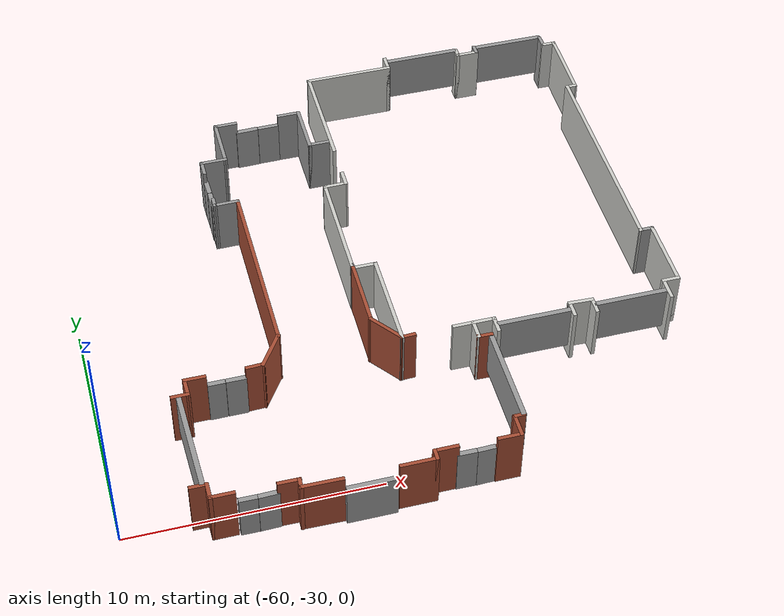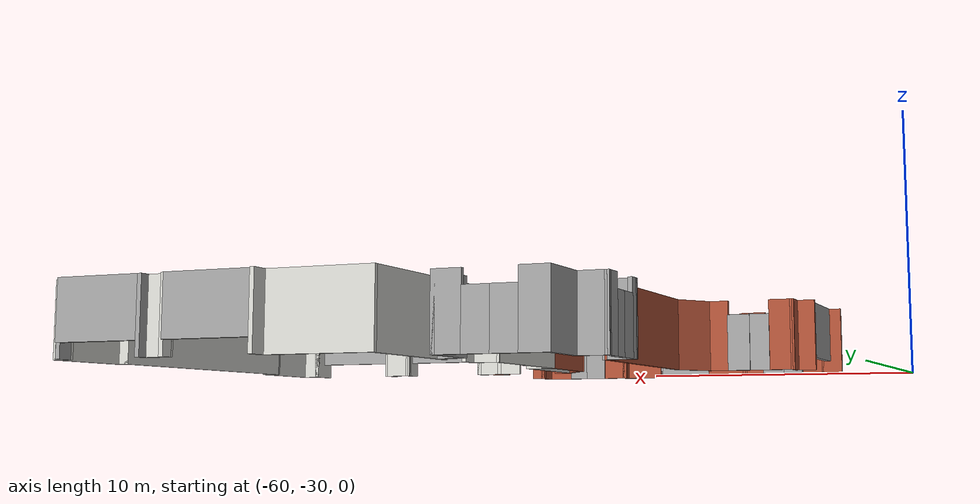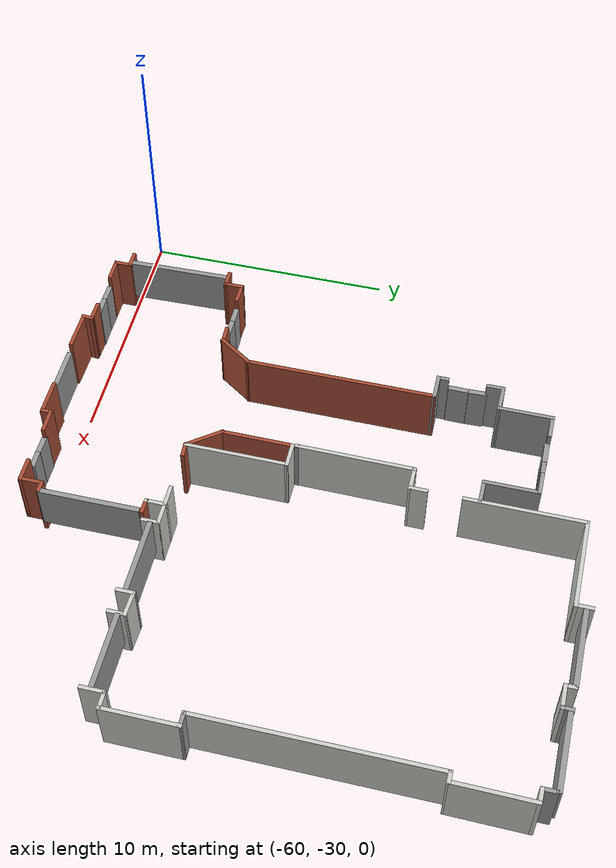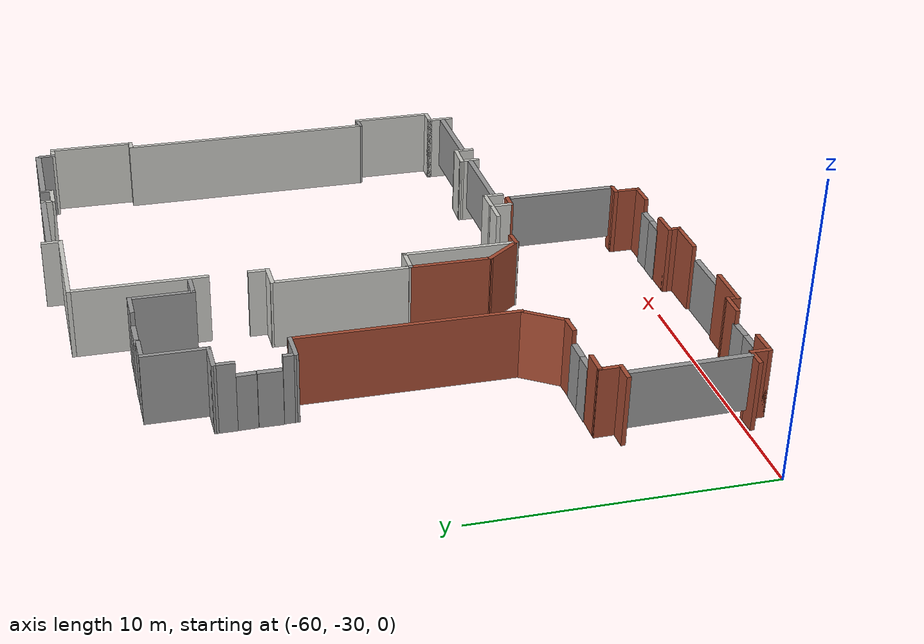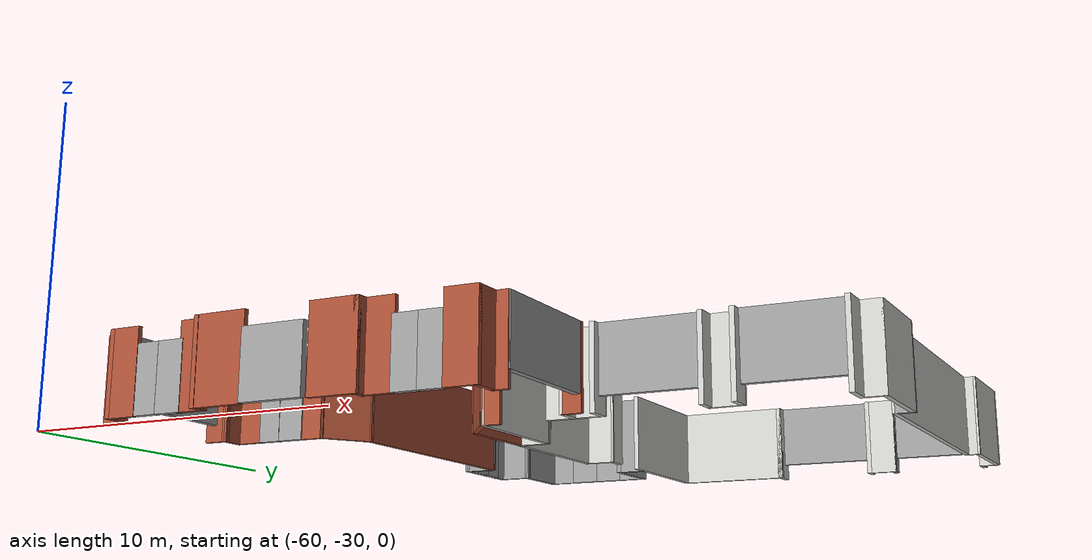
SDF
<?xml version='1.0'?>
<sdf version='1.7'>
  <model name='MODELO_LAB'>
    <pose>-28.6726 -15.6261 0 0 -0 0</pose>
    <link name='Door_10'>
      <collision name='Door_10_Collision'>
        <geometry>
          <box>
            <size>0.807976 0.2 2</size>
          </box>
        </geometry>
        <pose>0 0 1 0 -0 0</pose>
      </collision>
      <visual name='Door_10_Visual'>
        <pose>0 0 1 0 -0 0</pose>
        <geometry>
          <box>
            <size>0.807976 0.2 2</size>
          </box>
        </geometry>
        <material>
          <script>
            <uri>file://media/materials/scripts/gazebo.material</uri>
            <name>Gazebo/Grey</name>
          </script>
        </material>
      </visual>
      <pose>-25.8961 -15.1828 0 0 0 -3.1168</pose>
    </link>
    <link name='Door_11'>
      <collision name='Door_11_Collision'>
        <geometry>
          <box>
            <size>0.715908 0.2 2</size>
          </box>
        </geometry>
        <pose>0 0 1 0 -0 0</pose>
      </collision>
      <visual name='Door_11_Visual'>
        <pose>0 0 1 0 -0 0</pose>
        <geometry>
          <box>
            <size>0.715908 0.2 2</size>
          </box>
        </geometry>
        <material>
          <script>
            <uri>file://media/materials/scripts/gazebo.material</uri>
            <name>Gazebo/Grey</name>
          </script>
        </material>
      </visual>
      <pose>-26.6587 -15.1853 0 0 -0 3.12998</pose>
    </link>
    <link name='Door_12'>
      <collision name='Door_12_Collision'>
        <geometry>
          <box>
            <size>0.702745 0.2 2</size>
          </box>
        </geometry>
        <pose>0 0 1 0 -0 0</pose>
      </collision>
      <visual name='Door_12_Visual'>
        <pose>0 0 1 0 -0 0</pose>
        <geometry>
          <box>
            <size>0.702745 0.2 2</size>
          </box>
        </geometry>
        <material>
          <script>
            <uri>file://media/materials/scripts/gazebo.material</uri>
            <name>Gazebo/Grey</name>
          </script>
        </material>
      </visual>
      <pose>-26.7048 -9.648 0 0 -0 0</pose>
    </link>
    <link name='Door_13'>
      <collision name='Door_13_Collision'>
        <geometry>
          <box>
            <size>0.807948 0.2 2</size>
          </box>
        </geometry>
        <pose>0 0 1 0 -0 0</pose>
      </collision>
      <visual name='Door_13_Visual'>
        <pose>0 0 1 0 -0 0</pose>
        <geometry>
          <box>
            <size>0.807948 0.2 2</size>
          </box>
        </geometry>
        <material>
          <script>
            <uri>file://media/materials/scripts/gazebo.material</uri>
            <name>Gazebo/Grey</name>
          </script>
        </material>
      </visual>
      <pose>-25.942 -9.648 0 0 -0 0</pose>
    </link>
    <link name='Door_14'>
      <collision name='Door_14_Collision'>
        <geometry>
          <box>
            <size>0.794797 0.2 2</size>
          </box>
        </geometry>
        <pose>0 0 1 0 -0 0</pose>
      </collision>
      <visual name='Door_14_Visual'>
        <pose>0 0 1 0 -0 0</pose>
        <geometry>
          <box>
            <size>0.794797 0.2 2</size>
          </box>
        </geometry>
        <material>
          <script>
            <uri>file://media/materials/scripts/gazebo.material</uri>
            <name>Gazebo/Grey</name>
          </script>
        </material>
      </visual>
      <pose>-18.4924 -15.1843 0 0 -0 3.13046</pose>
    </link>
    <link name='Door_15'>
      <collision name='Door_15_Collision'>
        <geometry>
          <box>
            <size>0.715608 0.2 2</size>
          </box>
        </geometry>
        <pose>0 0 1 0 -0 0</pose>
      </collision>
      <visual name='Door_15_Visual'>
        <pose>0 0 1 0 -0 0</pose>
        <geometry>
          <box>
            <size>0.715608 0.2 2</size>
          </box>
        </geometry>
        <material>
          <script>
            <uri>file://media/materials/scripts/gazebo.material</uri>
            <name>Gazebo/Grey</name>
          </script>
        </material>
      </visual>
      <pose>-17.7561 -15.1866 0 0 0 -3.11468</pose>
    </link>
    <link name='Door_4'>
      <collision name='Door_4_Collision'>
        <geometry>
          <box>
            <size>0.9 0.17 2</size>
          </box>
        </geometry>
        <pose>0 0 1 0 -0 0</pose>
      </collision>
      <visual name='Door_4_Visual'>
        <pose>0 0 1 0 -0 0</pose>
        <geometry>
          <box>
            <size>0.9 0.17 2</size>
          </box>
        </geometry>
        <material>
          <script>
            <uri>file://media/materials/scripts/gazebo.material</uri>
            <name>Gazebo/Grey</name>
          </script>
        </material>
      </visual>
      <pose>-21.7339 3.89683 0 0 -0 -3.13221</pose>
    </link>
    <link name='Door_5'>
      <collision name='Door_5_Collision'>
        <geometry>
          <box>
            <size>0.946663 0.2 2</size>
          </box>
        </geometry>
        <pose>0 0 1 0 -0 0</pose>
      </collision>
      <visual name='Door_5_Visual'>
        <pose>0 0 1 0 -0 0</pose>
        <geometry>
          <box>
            <size>0.946663 0.2 2</size>
          </box>
        </geometry>
        <material>
          <script>
            <uri>file://media/materials/scripts/gazebo.material</uri>
            <name>Gazebo/Grey</name>
          </script>
        </material>
      </visual>
      <pose>-22.6642 3.88678 0 0 -0 -3.11869</pose>
    </link>
    <link name='Door_6'>
      <collision name='Door_6_Collision'>
        <geometry>
          <box>
            <size>0.807953 0.2 2</size>
          </box>
        </geometry>
        <pose>0 0 1 0 -0 0</pose>
      </collision>
      <visual name='Door_6_Visual'>
        <pose>0 0 1 0 -0 0</pose>
        <geometry>
          <box>
            <size>0.807953 0.2 2</size>
          </box>
        </geometry>
        <material>
          <script>
            <uri>file://media/materials/scripts/gazebo.material</uri>
            <name>Gazebo/Grey</name>
          </script>
        </material>
      </visual>
      <pose>-24.9563 0.070094 0 0 -0 1.5601</pose>
    </link>
    <link name='Door_7'>
      <collision name='Door_7_Collision'>
        <geometry>
          <box>
            <size>0.741322 0.2 2</size>
          </box>
        </geometry>
        <pose>0 0 1 0 -0 0</pose>
      </collision>
      <visual name='Door_7_Visual'>
        <pose>0 0 1 0 -0 0</pose>
        <geometry>
          <box>
            <size>0.741322 0.2 2</size>
          </box>
        </geometry>
        <material>
          <script>
            <uri>file://media/materials/scripts/gazebo.material</uri>
            <name>Gazebo/Grey</name>
          </script>
        </material>
      </visual>
      <pose>-24.9671 0.858845 0 0 -0 1.59405</pose>
    </link>
    <link name='Door_9'>
      <collision name='Door_9_Collision'>
        <geometry>
          <box>
            <size>1.93888 0.2 2</size>
          </box>
        </geometry>
        <pose>0 0 1 0 -0 0</pose>
      </collision>
      <visual name='Door_9_Visual'>
        <pose>0 0 1 0 -0 0</pose>
        <geometry>
          <box>
            <size>1.93888 0.2 2</size>
          </box>
        </geometry>
        <material>
          <script>
            <uri>file://media/materials/scripts/gazebo.material</uri>
            <name>Gazebo/Grey</name>
          </script>
        </material>
      </visual>
      <pose>-22.1942 -15.6445 0 0 -0 0</pose>
    </link>
    <link name='Wall_100'>
      <collision name='Wall_100_Collision'>
        <geometry>
          <box>
            <size>1 0.15 2.5</size>
          </box>
        </geometry>
        <pose>0 0 1.25 0 -0 0</pose>
      </collision>
      <visual name='Wall_100_Visual'>
        <pose>0 0 1.25 0 -0 0</pose>
        <geometry>
          <box>
            <size>1 0.15 2.5</size>
          </box>
        </geometry>
        <material>
          <script>
            <uri>file://media/materials/scripts/gazebo.material</uri>
            <name>Gazebo/Grey</name>
          </script>
          <ambient>1 1 1 1</ambient>
        </material>
        <meta>
          <layer>0</layer>
        </meta>
      </visual>
      <pose>-19.945 1.79563 0 0 -0 0</pose>
    </link>
    <link name='Wall_102'>
      <collision name='Wall_102_Collision'>
        <geometry>
          <box>
            <size>1.056 0.15 2.5</size>
          </box>
        </geometry>
        <pose>0 0 1.25 0 -0 0</pose>
      </collision>
      <visual name='Wall_102_Visual'>
        <pose>0 0 1.25 0 -0 0</pose>
        <geometry>
          <box>
            <size>1.056 0.15 2.5</size>
          </box>
        </geometry>
        <material>
          <script>
            <uri>file://media/materials/scripts/gazebo.material</uri>
            <name>Gazebo/CeilingTiled</name>
          </script>
          <ambient>1 1 1 1</ambient>
        </material>
        <meta>
          <layer>0</layer>
        </meta>
      </visual>
      <pose>-12.2165 -9.59851 0 0 -0 -0.044415</pose>
    </link>
    <link name='Wall_11'>
      <collision name='Wall_11_Collision'>
        <geometry>
          <box>
            <size>0.75 0.15 2.5</size>
          </box>
        </geometry>
        <pose>0 0 1.25 0 -0 0</pose>
      </collision>
      <visual name='Wall_11_Visual'>
        <pose>0 0 1.25 0 -0 0</pose>
        <geometry>
          <box>
            <size>0.75 0.15 2.5</size>
          </box>
        </geometry>
        <material>
          <script>
            <uri>file://media/materials/scripts/gazebo.material</uri>
            <name>Gazebo/CeilingTiled</name>
          </script>
          <ambient>1 1 1 1</ambient>
        </material>
        <meta>
          <layer>0</layer>
        </meta>
      </visual>
      <pose>-19.4568 -0.553311 0 0 -0 -1.5708</pose>
    </link>
    <link name='Wall_12'>
      <collision name='Wall_12_Collision'>
        <geometry>
          <box>
            <size>1.02552 0.15 2.5</size>
          </box>
        </geometry>
        <pose>0 0 1.25 0 -0 0</pose>
      </collision>
      <visual name='Wall_12_Visual'>
        <pose>0 0 1.25 0 -0 0</pose>
        <geometry>
          <box>
            <size>1.02552 0.15 2.5</size>
          </box>
        </geometry>
        <material>
          <script>
            <uri>file://media/materials/scripts/gazebo.material</uri>
            <name>Gazebo/CeilingTiled</name>
          </script>
          <ambient>1 1 1 1</ambient>
        </material>
        <meta>
          <layer>0</layer>
        </meta>
      </visual>
      <pose>-19.8945 -0.85637 0 0 -0 -3.13461</pose>
    </link>
    <link name='Wall_14'>
      <collision name='Wall_14_Collision'>
        <geometry>
          <box>
            <size>4.74421 0.15 2.5</size>
          </box>
        </geometry>
        <pose>0 0 1.25 0 -0 0</pose>
      </collision>
      <visual name='Wall_14_Visual'>
        <pose>0 0 1.25 0 -0 0</pose>
        <geometry>
          <box>
            <size>4.74421 0.15 2.5</size>
          </box>
        </geometry>
        <material>
          <script>
            <uri>file://media/materials/scripts/gazebo.material</uri>
            <name>Gazebo/CeilingTiled</name>
          </script>
          <ambient>1 1 1 1</ambient>
        </material>
        <meta>
          <layer>0</layer>
        </meta>
      </visual>
      <pose>-20.3481 -3.15637 0 0 -0 -1.57769</pose>
    </link>
    <link name='Wall_15'>
      <collision name='Wall_15_Collision'>
        <geometry>
          <box>
            <size>0.317231 0.15 2.5</size>
          </box>
        </geometry>
        <pose>0 0 1.25 0 -0 0</pose>
      </collision>
      <visual name='Wall_15_Visual'>
        <pose>0 0 1.25 0 -0 0</pose>
        <geometry>
          <box>
            <size>0.317231 0.15 2.5</size>
          </box>
        </geometry>
        <material>
          <script>
            <uri>file://media/materials/scripts/gazebo.material</uri>
            <name>Gazebo/Grey</name>
          </script>
          <ambient>1 1 1 1</ambient>
        </material>
        <meta>
          <layer>0</layer>
        </meta>
      </visual>
      <pose>-20.3423 -5.5363 0 0 -0 -1.44863</pose>
    </link>
    <link name='Wall_16'>
      <collision name='Wall_16_Collision'>
        <geometry>
          <box>
            <size>1.05717 0.15 2.5</size>
          </box>
        </geometry>
        <pose>0 0 1.25 0 -0 0</pose>
      </collision>
      <visual name='Wall_16_Visual'>
        <pose>0 0 1.25 0 -0 0</pose>
        <geometry>
          <box>
            <size>1.05717 0.15 2.5</size>
          </box>
        </geometry>
        <material>
          <script>
            <uri>file://media/materials/scripts/gazebo.material</uri>
            <name>Gazebo/CeilingTiled</name>
          </script>
          <ambient>1 1 1 1</ambient>
        </material>
        <meta>
          <layer>0</layer>
        </meta>
      </visual>
      <pose>-19.89 -5.6193 0 0 -0 0</pose>
    </link>
    <link name='Wall_17'>
      <collision name='Wall_17_Collision'>
        <geometry>
          <box>
            <size>4.12626 0.15 2.5</size>
          </box>
        </geometry>
        <pose>0 0 1.25 0 -0 0</pose>
      </collision>
      <visual name='Wall_17_Visual'>
        <pose>0 0 1.25 0 -0 0</pose>
        <geometry>
          <box>
            <size>4.12626 0.15 2.5</size>
          </box>
        </geometry>
        <material>
          <script>
            <uri>file://media/materials/scripts/gazebo.material</uri>
            <name>Gazebo/CeilingTiled</name>
          </script>
          <ambient>1 1 1 1</ambient>
        </material>
        <meta>
          <layer>0</layer>
        </meta>
      </visual>
      <pose>-19.4384 -7.63056 0 0 -0 -1.57179</pose>
    </link>
    <link name='Wall_19'>
      <collision name='Wall_19_Collision'>
        <geometry>
          <box>
            <size>0.636234 0.15 2.5</size>
          </box>
        </geometry>
        <pose>0 0 1.25 0 -0 0</pose>
      </collision>
      <visual name='Wall_19_Visual'>
        <pose>0 0 1.25 0 -0 0</pose>
        <geometry>
          <box>
            <size>0.636234 0.15 2.5</size>
          </box>
        </geometry>
        <material>
          <script>
            <uri>file://media/materials/scripts/gazebo.material</uri>
            <name>Gazebo/Bricks</name>
          </script>
          <ambient>1 1 1 1</ambient>
        </material>
        <meta>
          <layer>0</layer>
        </meta>
      </visual>
      <pose>-19.1975 -9.60664 0 0 -0 -3.09203</pose>
    </link>
    <link name='Wall_21'>
      <collision name='Wall_21_Collision'>
        <geometry>
          <box>
            <size>1.75 0.15 2.5</size>
          </box>
        </geometry>
        <pose>0 0 1.25 0 -0 0</pose>
      </collision>
      <visual name='Wall_21_Visual'>
        <pose>0 0 1.25 0 -0 0</pose>
        <geometry>
          <box>
            <size>1.75 0.15 2.5</size>
          </box>
        </geometry>
        <material>
          <script>
            <uri>file://media/materials/scripts/gazebo.material</uri>
            <name>Gazebo/CeilingTiled</name>
          </script>
          <ambient>1 1 1 1</ambient>
        </material>
        <meta>
          <layer>0</layer>
        </meta>
      </visual>
      <pose>-16.5555 -9.59851 0 0 -0 0</pose>
    </link>
    <link name='Wall_22'>
      <collision name='Wall_22_Collision'>
        <geometry>
          <box>
            <size>0.75 0.15 2.5</size>
          </box>
        </geometry>
        <pose>0 0 1.25 0 -0 0</pose>
      </collision>
      <visual name='Wall_22_Visual'>
        <pose>0 0 1.25 0 -0 0</pose>
        <geometry>
          <box>
            <size>0.75 0.15 2.5</size>
          </box>
        </geometry>
        <material>
          <script>
            <uri>file://media/materials/scripts/gazebo.material</uri>
            <name>Gazebo/CeilingTiled</name>
          </script>
          <ambient>1 1 1 1</ambient>
        </material>
        <meta>
          <layer>0</layer>
        </meta>
      </visual>
      <pose>-15.7555 -9.89851 0 0 -0 -1.5708</pose>
    </link>
    <link name='Wall_24'>
      <collision name='Wall_24_Collision'>
        <geometry>
          <box>
            <size>0.75 0.15 2.5</size>
          </box>
        </geometry>
        <pose>0 0 1.25 0 -0 0</pose>
      </collision>
      <visual name='Wall_24_Visual'>
        <pose>0 0 1.25 0 -0 0</pose>
        <geometry>
          <box>
            <size>0.75 0.15 2.5</size>
          </box>
        </geometry>
        <material>
          <script>
            <uri>file://media/materials/scripts/gazebo.material</uri>
            <name>Gazebo/CeilingTiled</name>
          </script>
          <ambient>1 1 1 1</ambient>
        </material>
        <meta>
          <layer>0</layer>
        </meta>
      </visual>
      <pose>-12.669 -9.8784 0 0 -0 -1.5708</pose>
    </link>
    <link name='Wall_26'>
      <collision name='Wall_26_Collision'>
        <geometry>
          <box>
            <size>0.75 0.15 2.5</size>
          </box>
        </geometry>
        <pose>0 0 1.25 0 -0 0</pose>
      </collision>
      <visual name='Wall_26_Visual'>
        <pose>0 0 1.25 0 -0 0</pose>
        <geometry>
          <box>
            <size>0.75 0.15 2.5</size>
          </box>
        </geometry>
        <material>
          <script>
            <uri>file://media/materials/scripts/gazebo.material</uri>
            <name>Gazebo/CeilingTiled</name>
          </script>
          <ambient>1 1 1 1</ambient>
        </material>
        <meta>
          <layer>0</layer>
        </meta>
      </visual>
      <pose>-11.7639 -9.91862 0 0 -0 -1.5708</pose>
    </link>
    <link name='Wall_28'>
      <collision name='Wall_28_Collision'>
        <geometry>
          <box>
            <size>1 0.15 2.5</size>
          </box>
        </geometry>
        <pose>0 0 1.25 0 -0 0</pose>
      </collision>
      <visual name='Wall_28_Visual'>
        <pose>0 0 1.25 0 -0 0</pose>
        <geometry>
          <box>
            <size>1 0.15 2.5</size>
          </box>
        </geometry>
        <material>
          <script>
            <uri>file://media/materials/scripts/gazebo.material</uri>
            <name>Gazebo/CeilingTiled</name>
          </script>
          <ambient>1 1 1 1</ambient>
        </material>
        <meta>
          <layer>0</layer>
        </meta>
      </visual>
      <pose>-8.70666 -9.79703 0 0 -0 1.5708</pose>
    </link>
    <link name='Wall_29'>
      <collision name='Wall_29_Collision'>
        <geometry>
          <box>
            <size>0.75 0.15 2.5</size>
          </box>
        </geometry>
        <pose>0 0 1.25 0 -0 0</pose>
      </collision>
      <visual name='Wall_29_Visual'>
        <pose>0 0 1.25 0 -0 0</pose>
        <geometry>
          <box>
            <size>0.75 0.15 2.5</size>
          </box>
        </geometry>
        <material>
          <script>
            <uri>file://media/materials/scripts/gazebo.material</uri>
            <name>Gazebo/CeilingTiled</name>
          </script>
          <ambient>1 1 1 1</ambient>
        </material>
        <meta>
          <layer>0</layer>
        </meta>
      </visual>
      <pose>-8.40666 -9.37203 0 0 -0 0</pose>
    </link>
    <link name='Wall_30'>
      <collision name='Wall_30_Collision'>
        <geometry>
          <box>
            <size>3 0.15 2.5</size>
          </box>
        </geometry>
        <pose>0 0 1.25 0 -0 0</pose>
      </collision>
      <visual name='Wall_30_Visual'>
        <pose>0 0 1.25 0 -0 0</pose>
        <geometry>
          <box>
            <size>3 0.15 2.5</size>
          </box>
        </geometry>
        <material>
          <script>
            <uri>file://media/materials/scripts/gazebo.material</uri>
            <name>Gazebo/CeilingTiled</name>
          </script>
          <ambient>1 1 1 1</ambient>
        </material>
        <meta>
          <layer>0</layer>
        </meta>
      </visual>
      <pose>-8.10666 -7.94703 0 0 -0 1.5708</pose>
    </link>
    <link name='Wall_31'>
      <collision name='Wall_31_Collision'>
        <geometry>
          <box>
            <size>0.637476 0.15 2.5</size>
          </box>
        </geometry>
        <pose>0 0 1.25 0 -0 0</pose>
      </collision>
      <visual name='Wall_31_Visual'>
        <pose>0 0 1.25 0 -0 0</pose>
        <geometry>
          <box>
            <size>0.637476 0.15 2.5</size>
          </box>
        </geometry>
        <material>
          <script>
            <uri>file://media/materials/scripts/gazebo.material</uri>
            <name>Gazebo/Grey</name>
          </script>
          <ambient>1 1 1 1</ambient>
        </material>
        <meta>
          <layer>0</layer>
        </meta>
      </visual>
      <pose>-8.35037 -6.52121 0 0 -0 3.13823</pose>
    </link>
    <link name='Wall_34'>
      <collision name='Wall_34_Collision'>
        <geometry>
          <box>
            <size>9.25 0.15 2.5</size>
          </box>
        </geometry>
        <pose>0 0 1.25 0 -0 0</pose>
      </collision>
      <visual name='Wall_34_Visual'>
        <pose>0 0 1.25 0 -0 0</pose>
        <geometry>
          <box>
            <size>9.25 0.15 2.5</size>
          </box>
        </geometry>
        <material>
          <script>
            <uri>file://media/materials/scripts/gazebo.material</uri>
            <name>Gazebo/CeilingTiled</name>
          </script>
          <ambient>1 1 1 1</ambient>
        </material>
        <meta>
          <layer>0</layer>
        </meta>
      </visual>
      <pose>-8.59409 -1.97039 0 0 -0 1.5708</pose>
    </link>
    <link name='Wall_35'>
      <collision name='Wall_35_Collision'>
        <geometry>
          <box>
            <size>0.5 0.15 2.5</size>
          </box>
        </geometry>
        <pose>0 0 1.25 0 -0 0</pose>
      </collision>
      <visual name='Wall_35_Visual'>
        <pose>0 0 1.25 0 -0 0</pose>
        <geometry>
          <box>
            <size>0.5 0.15 2.5</size>
          </box>
        </geometry>
        <material>
          <script>
            <uri>file://media/materials/scripts/gazebo.material</uri>
            <name>Gazebo/CeilingTiled</name>
          </script>
          <ambient>1 1 1 1</ambient>
        </material>
        <meta>
          <layer>0</layer>
        </meta>
      </visual>
      <pose>-8.41909 2.57961 0 0 -0 0</pose>
    </link>
    <link name='Wall_37'>
      <collision name='Wall_37_Collision'>
        <geometry>
          <box>
            <size>3.14428 0.15 2.5</size>
          </box>
        </geometry>
        <pose>0 0 1.25 0 -0 0</pose>
      </collision>
      <visual name='Wall_37_Visual'>
        <pose>0 0 1.25 0 -0 0</pose>
        <geometry>
          <box>
            <size>3.14428 0.15 2.5</size>
          </box>
        </geometry>
        <material>
          <script>
            <uri>file://media/materials/scripts/gazebo.material</uri>
            <name>Gazebo/CeilingTiled</name>
          </script>
          <ambient>1 1 1 1</ambient>
        </material>
        <meta>
          <layer>0</layer>
        </meta>
      </visual>
      <pose>-8.23166 4.0767 0 0 -0 1.56249</pose>
    </link>
    <link name='Wall_39'>
      <collision name='Wall_39_Collision'>
        <geometry>
          <box>
            <size>0.646577 0.15 2.5</size>
          </box>
        </geometry>
        <pose>0 0 1.25 0 -0 0</pose>
      </collision>
      <visual name='Wall_39_Visual'>
        <pose>0 0 1.25 0 -0 0</pose>
        <geometry>
          <box>
            <size>0.646577 0.15 2.5</size>
          </box>
        </geometry>
        <material>
          <script>
            <uri>file://media/materials/scripts/gazebo.material</uri>
            <name>Gazebo/CeilingTiled</name>
          </script>
          <ambient>1 1 1 1</ambient>
        </material>
        <meta>
          <layer>0</layer>
        </meta>
      </visual>
      <pose>-8.46707 5.57628 0 0 -0 -0.010068</pose>
    </link>
    <link name='Wall_41'>
      <collision name='Wall_41_Collision'>
        <geometry>
          <box>
            <size>0.62729 0.15 2.5</size>
          </box>
        </geometry>
        <pose>0 0 1.25 0 -0 0</pose>
      </collision>
      <visual name='Wall_41_Visual'>
        <pose>0 0 1.25 0 -0 0</pose>
        <geometry>
          <box>
            <size>0.62729 0.15 2.5</size>
          </box>
        </geometry>
        <material>
          <script>
            <uri>file://media/materials/scripts/gazebo.material</uri>
            <name>Gazebo/Grey</name>
          </script>
          <ambient>1 1 1 1</ambient>
        </material>
        <meta>
          <layer>0</layer>
        </meta>
      </visual>
      <pose>-8.71739 5.82737 0 0 -0 1.58121</pose>
    </link>
    <link name='Wall_45'>
      <collision name='Wall_45_Collision'>
        <geometry>
          <box>
            <size>0.5 0.15 2.5</size>
          </box>
        </geometry>
        <pose>0 0 1.25 0 -0 0</pose>
      </collision>
      <visual name='Wall_45_Visual'>
        <pose>0 0 1.25 0 -0 0</pose>
        <geometry>
          <box>
            <size>0.5 0.15 2.5</size>
          </box>
        </geometry>
        <material>
          <script>
            <uri>file://media/materials/scripts/gazebo.material</uri>
            <name>Gazebo/Grey</name>
          </script>
          <ambient>1 1 1 1</ambient>
        </material>
        <meta>
          <layer>0</layer>
        </meta>
      </visual>
      <pose>-11.7627 6.02102 0 0 -0 -1.5708</pose>
    </link>
    <link name='Wall_46'>
      <collision name='Wall_46_Collision'>
        <geometry>
          <box>
            <size>1 0.15 2.5</size>
          </box>
        </geometry>
        <pose>0 0 1.25 0 -0 0</pose>
      </collision>
      <visual name='Wall_46_Visual'>
        <pose>0 0 1.25 0 -0 0</pose>
        <geometry>
          <box>
            <size>1 0.15 2.5</size>
          </box>
        </geometry>
        <material>
          <script>
            <uri>file://media/materials/scripts/gazebo.material</uri>
            <name>Gazebo/CeilingTiled</name>
          </script>
          <ambient>1 1 1 1</ambient>
        </material>
        <meta>
          <layer>0</layer>
        </meta>
      </visual>
      <pose>-12.1877 5.84602 0 0 -0 3.14159</pose>
    </link>
    <link name='Wall_47'>
      <collision name='Wall_47_Collision'>
        <geometry>
          <box>
            <size>0.5 0.15 2.5</size>
          </box>
        </geometry>
        <pose>0 0 1.25 0 -0 0</pose>
      </collision>
      <visual name='Wall_47_Visual'>
        <pose>0 0 1.25 0 -0 0</pose>
        <geometry>
          <box>
            <size>0.5 0.15 2.5</size>
          </box>
        </geometry>
        <material>
          <script>
            <uri>file://media/materials/scripts/gazebo.material</uri>
            <name>Gazebo/CeilingTiled</name>
          </script>
          <ambient>1 1 1 1</ambient>
        </material>
        <meta>
          <layer>0</layer>
        </meta>
      </visual>
      <pose>-12.6127 6.02102 0 0 -0 1.5708</pose>
    </link>
    <link name='Wall_49'>
      <collision name='Wall_49_Collision'>
        <geometry>
          <box>
            <size>0.75 0.15 2.5</size>
          </box>
        </geometry>
        <pose>0 0 1.25 0 -0 0</pose>
      </collision>
      <visual name='Wall_49_Visual'>
        <pose>0 0 1.25 0 -0 0</pose>
        <geometry>
          <box>
            <size>0.75 0.15 2.5</size>
          </box>
        </geometry>
        <material>
          <script>
            <uri>file://media/materials/scripts/gazebo.material</uri>
            <name>Gazebo/CeilingTiled</name>
          </script>
          <ambient>1 1 1 1</ambient>
        </material>
        <meta>
          <layer>0</layer>
        </meta>
      </visual>
      <pose>-15.8418 6.10281 0 0 -0 1.5708</pose>
    </link>
    <link name='Wall_5'>
      <collision name='Wall_5_Collision'>
        <geometry>
          <box>
            <size>3.75 0.15 2.5</size>
          </box>
        </geometry>
        <pose>0 0 1.25 0 -0 0</pose>
      </collision>
      <visual name='Wall_5_Visual'>
        <pose>0 0 1.25 0 -0 0</pose>
        <geometry>
          <box>
            <size>3.75 0.15 2.5</size>
          </box>
        </geometry>
        <material>
          <script>
            <uri>file://media/materials/scripts/gazebo.material</uri>
            <name>Gazebo/CeilingTiled</name>
          </script>
          <ambient>1 1 1 1</ambient>
        </material>
        <meta>
          <layer>0</layer>
        </meta>
      </visual>
      <pose>-17.6418 5.80281 0 0 -0 0</pose>
    </link>
    <link name='Wall_52'>
      <collision name='Wall_52_Collision'>
        <geometry>
          <box>
            <size>0.881453 0.15 2.5</size>
          </box>
        </geometry>
        <pose>0 0 1.25 0 -0 0</pose>
      </collision>
      <visual name='Wall_52_Visual'>
        <pose>0 0 1.25 0 -0 0</pose>
        <geometry>
          <box>
            <size>0.881453 0.15 2.5</size>
          </box>
        </geometry>
        <material>
          <script>
            <uri>file://media/materials/scripts/gazebo.material</uri>
            <name>Gazebo/CeilingTiled</name>
          </script>
          <ambient>1 1 1 1</ambient>
        </material>
        <meta>
          <layer>0</layer>
        </meta>
      </visual>
      <pose>-16.5898 -9.95651 0 0 -0 1.5708</pose>
    </link>
    <link name='Wall_54'>
      <collision name='Wall_54_Collision'>
        <geometry>
          <box>
            <size>0.653246 0.15 2.5</size>
          </box>
        </geometry>
        <pose>0 0 1.25 0 -0 0</pose>
      </collision>
      <visual name='Wall_54_Visual'>
        <pose>0 0 1.25 0 -0 0</pose>
        <geometry>
          <box>
            <size>0.653246 0.15 2.5</size>
          </box>
        </geometry>
        <material>
          <script>
            <uri>file://media/materials/scripts/gazebo.material</uri>
            <name>Gazebo/Bricks</name>
          </script>
          <ambient>1 1 1 1</ambient>
        </material>
        <meta>
          <layer>0</layer>
        </meta>
      </visual>
      <pose>-16.3385 -10.3286 0 0 -0 -0.02631</pose>
    </link>
    <link name='Wall_56'>
      <collision name='Wall_56_Collision'>
        <geometry>
          <box>
            <size>0.5 0.15 2.5</size>
          </box>
        </geometry>
        <pose>0 0 1.25 0 -0 0</pose>
      </collision>
      <visual name='Wall_56_Visual'>
        <pose>0 0 1.25 0 -0 0</pose>
        <geometry>
          <box>
            <size>0.5 0.15 2.5</size>
          </box>
        </geometry>
        <material>
          <script>
            <uri>file://media/materials/scripts/gazebo.material</uri>
            <name>Gazebo/Bricks</name>
          </script>
          <ambient>1 1 1 1</ambient>
        </material>
        <meta>
          <layer>0</layer>
        </meta>
      </visual>
      <pose>-16.2815 -14.3864 0 0 -0 3.14159</pose>
    </link>
    <link name='Wall_57'>
      <collision name='Wall_57_Collision'>
        <geometry>
          <box>
            <size>1 0.15 2.5</size>
          </box>
        </geometry>
        <pose>0 0 1.25 0 -0 0</pose>
      </collision>
      <visual name='Wall_57_Visual'>
        <pose>0 0 1.25 0 -0 0</pose>
        <geometry>
          <box>
            <size>1 0.15 2.5</size>
          </box>
        </geometry>
        <material>
          <script>
            <uri>file://media/materials/scripts/gazebo.material</uri>
            <name>Gazebo/Bricks</name>
          </script>
          <ambient>1 1 1 1</ambient>
        </material>
        <meta>
          <layer>0</layer>
        </meta>
      </visual>
      <pose>-16.4565 -14.8114 0 0 -0 -1.5708</pose>
    </link>
    <link name='Wall_58'>
      <collision name='Wall_58_Collision'>
        <geometry>
          <box>
            <size>1 0.15 2.5</size>
          </box>
        </geometry>
        <pose>0 0 1.25 0 -0 0</pose>
      </collision>
      <visual name='Wall_58_Visual'>
        <pose>0 0 1.25 0 -0 0</pose>
        <geometry>
          <box>
            <size>1 0.15 2.5</size>
          </box>
        </geometry>
        <material>
          <script>
            <uri>file://media/materials/scripts/gazebo.material</uri>
            <name>Gazebo/Bricks</name>
          </script>
          <ambient>1 1 1 1</ambient>
        </material>
        <meta>
          <layer>0</layer>
        </meta>
      </visual>
      <pose>-16.8815 -15.2364 0 0 -0 3.14159</pose>
    </link>
    <link name='Wall_60'>
      <collision name='Wall_60_Collision'>
        <geometry>
          <box>
            <size>1 0.15 2.5</size>
          </box>
        </geometry>
        <pose>0 0 1.25 0 -0 0</pose>
      </collision>
      <visual name='Wall_60_Visual'>
        <pose>0 0 1.25 0 -0 0</pose>
        <geometry>
          <box>
            <size>1 0.15 2.5</size>
          </box>
        </geometry>
        <material>
          <script>
            <uri>file://media/materials/scripts/gazebo.material</uri>
            <name>Gazebo/Bricks</name>
          </script>
          <ambient>1 1 1 1</ambient>
        </material>
        <meta>
          <layer>0</layer>
        </meta>
      </visual>
      <pose>-19.31 -15.1765 0 0 -0 3.14159</pose>
    </link>
    <link name='Wall_61'>
      <collision name='Wall_61_Collision'>
        <geometry>
          <box>
            <size>0.5 0.15 2.5</size>
          </box>
        </geometry>
        <pose>0 0 1.25 0 -0 0</pose>
      </collision>
      <visual name='Wall_61_Visual'>
        <pose>0 0 1.25 0 -0 0</pose>
        <geometry>
          <box>
            <size>0.5 0.15 2.5</size>
          </box>
        </geometry>
        <material>
          <script>
            <uri>file://media/materials/scripts/gazebo.material</uri>
            <name>Gazebo/Bricks</name>
          </script>
          <ambient>1 1 1 1</ambient>
        </material>
        <meta>
          <layer>0</layer>
        </meta>
      </visual>
      <pose>-19.735 -15.3515 0 0 -0 -1.5708</pose>
    </link>
    <link name='Wall_62'>
      <collision name='Wall_62_Collision'>
        <geometry>
          <box>
            <size>1.5 0.15 2.5</size>
          </box>
        </geometry>
        <pose>0 0 1.25 0 -0 0</pose>
      </collision>
      <visual name='Wall_62_Visual'>
        <pose>0 0 1.25 0 -0 0</pose>
        <geometry>
          <box>
            <size>1.5 0.15 2.5</size>
          </box>
        </geometry>
        <material>
          <script>
            <uri>file://media/materials/scripts/gazebo.material</uri>
            <name>Gazebo/Bricks</name>
          </script>
          <ambient>1 1 1 1</ambient>
        </material>
        <meta>
          <layer>0</layer>
        </meta>
      </visual>
      <pose>-20.41 -15.5265 0 0 -0 3.14159</pose>
    </link>
    <link name='Wall_64'>
      <collision name='Wall_64_Collision'>
        <geometry>
          <box>
            <size>1.66183 0.15 2.5</size>
          </box>
        </geometry>
        <pose>0 0 1.25 0 -0 0</pose>
      </collision>
      <visual name='Wall_64_Visual'>
        <pose>0 0 1.25 0 -0 0</pose>
        <geometry>
          <box>
            <size>1.66183 0.15 2.5</size>
          </box>
        </geometry>
        <material>
          <script>
            <uri>file://media/materials/scripts/gazebo.material</uri>
            <name>Gazebo/Bricks</name>
          </script>
          <ambient>1 1 1 1</ambient>
        </material>
        <meta>
          <layer>0</layer>
        </meta>
      </visual>
      <pose>-24.0094 -15.5382 0 0 -0 3.12596</pose>
    </link>
    <link name='Wall_66'>
      <collision name='Wall_66_Collision'>
        <geometry>
          <box>
            <size>0.50153 0.15 2.5</size>
          </box>
        </geometry>
        <pose>0 0 1.25 0 -0 0</pose>
      </collision>
      <visual name='Wall_66_Visual'>
        <pose>0 0 1.25 0 -0 0</pose>
        <geometry>
          <box>
            <size>0.50153 0.15 2.5</size>
          </box>
        </geometry>
        <material>
          <script>
            <uri>file://media/materials/scripts/gazebo.material</uri>
            <name>Gazebo/Bricks</name>
          </script>
          <ambient>1 1 1 1</ambient>
        </material>
        <meta>
          <layer>0</layer>
        </meta>
      </visual>
      <pose>-24.7672 -15.3627 0 0 -0 -1.62512</pose>
    </link>
    <link name='Wall_68'>
      <collision name='Wall_68_Collision'>
        <geometry>
          <box>
            <size>0.916235 0.15 2.5</size>
          </box>
        </geometry>
        <pose>0 0 1.25 0 -0 0</pose>
      </collision>
      <visual name='Wall_68_Visual'>
        <pose>0 0 1.25 0 -0 0</pose>
        <geometry>
          <box>
            <size>0.916235 0.15 2.5</size>
          </box>
        </geometry>
        <material>
          <script>
            <uri>file://media/materials/scripts/gazebo.material</uri>
            <name>Gazebo/Bricks</name>
          </script>
          <ambient>1 1 1 1</ambient>
        </material>
        <meta>
          <layer>0</layer>
        </meta>
      </visual>
      <pose>-25.1293 -15.1818 0 0 -0 -0.014924</pose>
    </link>
    <link name='Wall_70'>
      <collision name='Wall_70_Collision'>
        <geometry>
          <box>
            <size>1 0.15 2.5</size>
          </box>
        </geometry>
        <pose>0 0 1.25 0 -0 0</pose>
      </collision>
      <visual name='Wall_70_Visual'>
        <pose>0 0 1.25 0 -0 0</pose>
        <geometry>
          <box>
            <size>1 0.15 2.5</size>
          </box>
        </geometry>
        <material>
          <script>
            <uri>file://media/materials/scripts/gazebo.material</uri>
            <name>Gazebo/Bricks</name>
          </script>
          <ambient>1 1 1 1</ambient>
        </material>
        <meta>
          <layer>0</layer>
        </meta>
      </visual>
      <pose>-27.5726 -15.1647 0 0 -0 3.14159</pose>
    </link>
    <link name='Wall_71'>
      <collision name='Wall_71_Collision'>
        <geometry>
          <box>
            <size>0.75 0.15 2.5</size>
          </box>
        </geometry>
        <pose>0 0 1.25 0 -0 0</pose>
      </collision>
      <visual name='Wall_71_Visual'>
        <pose>0 0 1.25 0 -0 0</pose>
        <geometry>
          <box>
            <size>0.75 0.15 2.5</size>
          </box>
        </geometry>
        <material>
          <script>
            <uri>file://media/materials/scripts/gazebo.material</uri>
            <name>Gazebo/Bricks</name>
          </script>
          <ambient>1 1 1 1</ambient>
        </material>
        <meta>
          <layer>0</layer>
        </meta>
      </visual>
      <pose>-27.9976 -14.8647 0 0 -0 1.5708</pose>
    </link>
    <link name='Wall_72'>
      <collision name='Wall_72_Collision'>
        <geometry>
          <box>
            <size>0.75 0.15 2.5</size>
          </box>
        </geometry>
        <pose>0 0 1.25 0 -0 0</pose>
      </collision>
      <visual name='Wall_72_Visual'>
        <pose>0 0 1.25 0 -0 0</pose>
        <geometry>
          <box>
            <size>0.75 0.15 2.5</size>
          </box>
        </geometry>
        <material>
          <script>
            <uri>file://media/materials/scripts/gazebo.material</uri>
            <name>Gazebo/Bricks</name>
          </script>
          <ambient>1 1 1 1</ambient>
        </material>
        <meta>
          <layer>0</layer>
        </meta>
      </visual>
      <pose>-28.2976 -14.5647 0 0 -0 3.14159</pose>
    </link>
    <link name='Wall_74'>
      <collision name='Wall_74_Collision'>
        <geometry>
          <box>
            <size>0.75 0.15 2.5</size>
          </box>
        </geometry>
        <pose>0 0 1.25 0 -0 0</pose>
      </collision>
      <visual name='Wall_74_Visual'>
        <pose>0 0 1.25 0 -0 0</pose>
        <geometry>
          <box>
            <size>0.75 0.15 2.5</size>
          </box>
        </geometry>
        <material>
          <script>
            <uri>file://media/materials/scripts/gazebo.material</uri>
            <name>Gazebo/Bricks</name>
          </script>
          <ambient>1 1 1 1</ambient>
        </material>
        <meta>
          <layer>0</layer>
        </meta>
      </visual>
      <pose>-28.174 -10.3277 0 0 -0 0</pose>
    </link>
    <link name='Wall_75'>
      <collision name='Wall_75_Collision'>
        <geometry>
          <box>
            <size>0.841575 0.15 2.5</size>
          </box>
        </geometry>
        <pose>0 0 1.25 0 -0 0</pose>
      </collision>
      <visual name='Wall_75_Visual'>
        <pose>0 0 1.25 0 -0 0</pose>
        <geometry>
          <box>
            <size>0.841575 0.15 2.5</size>
          </box>
        </geometry>
        <material>
          <script>
            <uri>file://media/materials/scripts/gazebo.material</uri>
            <name>Gazebo/Bricks</name>
          </script>
          <ambient>1 1 1 1</ambient>
        </material>
        <meta>
          <layer>0</layer>
        </meta>
      </visual>
      <pose>-27.8798 -9.98192 0 0 -0 1.58733</pose>
    </link>
    <link name='Wall_76'>
      <collision name='Wall_76_Collision'>
        <geometry>
          <box>
            <size>0.899357 0.15 2.5</size>
          </box>
        </geometry>
        <pose>0 0 1.25 0 -0 0</pose>
      </collision>
      <visual name='Wall_76_Visual'>
        <pose>0 0 1.25 0 -0 0</pose>
        <geometry>
          <box>
            <size>0.899357 0.15 2.5</size>
          </box>
        </geometry>
        <material>
          <script>
            <uri>file://media/materials/scripts/gazebo.material</uri>
            <name>Gazebo/Bricks</name>
          </script>
          <ambient>1 1 1 1</ambient>
        </material>
        <meta>
          <layer>0</layer>
        </meta>
      </visual>
      <pose>-27.4994 -9.63887 0 0 -0 -0.007175</pose>
    </link>
    <link name='Wall_78'>
      <collision name='Wall_78_Collision'>
        <geometry>
          <box>
            <size>1.65947 0.15 2.5</size>
          </box>
        </geometry>
        <pose>0 0 1.25 0 -0 0</pose>
      </collision>
      <visual name='Wall_78_Visual'>
        <pose>0 0 1.25 0 -0 0</pose>
        <geometry>
          <box>
            <size>1.65947 0.15 2.5</size>
          </box>
        </geometry>
        <material>
          <script>
            <uri>file://media/materials/scripts/gazebo.material</uri>
            <name>Gazebo/Bricks</name>
          </script>
          <ambient>1 1 1 1</ambient>
        </material>
        <meta>
          <layer>0</layer>
        </meta>
      </visual>
      <pose>-19.8977 -9.01835 0 0 -0 2.22187</pose>
    </link>
    <link name='Wall_80'>
      <collision name='Wall_80_Collision'>
        <geometry>
          <box>
            <size>2.94956 0.15 2.5</size>
          </box>
        </geometry>
        <pose>0 0 1.25 0 -0 0</pose>
      </collision>
      <visual name='Wall_80_Visual'>
        <pose>0 0 1.25 0 -0 0</pose>
        <geometry>
          <box>
            <size>2.94956 0.15 2.5</size>
          </box>
        </geometry>
        <material>
          <script>
            <uri>file://media/materials/scripts/gazebo.material</uri>
            <name>Gazebo/Bricks</name>
          </script>
          <ambient>1 1 1 1</ambient>
        </material>
        <meta>
          <layer>0</layer>
        </meta>
      </visual>
      <pose>-20.3494 -7.01865 0 0 -0 1.56666</pose>
    </link>
    <link name='Wall_83'>
      <collision name='Wall_83_Collision'>
        <geometry>
          <box>
            <size>0.761863 0.15 2.5</size>
          </box>
        </geometry>
        <pose>0 0 1.25 0 -0 0</pose>
      </collision>
      <visual name='Wall_83_Visual'>
        <pose>0 0 1.25 0 -0 0</pose>
        <geometry>
          <box>
            <size>0.761863 0.15 2.5</size>
          </box>
        </geometry>
        <material>
          <script>
            <uri>file://media/materials/scripts/gazebo.material</uri>
            <name>Gazebo/Bricks</name>
          </script>
          <ambient>1 1 1 1</ambient>
        </material>
        <meta>
          <layer>0</layer>
        </meta>
      </visual>
      <pose>-25.1838 -9.61869 0 0 -0 0.037387</pose>
    </link>
    <link name='Wall_84'>
      <collision name='Wall_84_Collision'>
        <geometry>
          <box>
            <size>1.66939 0.15 2.5</size>
          </box>
        </geometry>
        <pose>0 0 1.25 0 -0 0</pose>
      </collision>
      <visual name='Wall_84_Visual'>
        <pose>0 0 1.25 0 -0 0</pose>
        <geometry>
          <box>
            <size>1.66939 0.15 2.5</size>
          </box>
        </geometry>
        <material>
          <script>
            <uri>file://media/materials/scripts/gazebo.material</uri>
            <name>Gazebo/Bricks</name>
          </script>
          <ambient>1 1 1 1</ambient>
        </material>
        <meta>
          <layer>0</layer>
        </meta>
      </visual>
      <pose>-24.4405 -8.98976 0 0 -0 0.975301</pose>
    </link>
    <link name='Wall_86'>
      <collision name='Wall_86_Collision'>
        <geometry>
          <box>
            <size>7.75 0.15 2.5</size>
          </box>
        </geometry>
        <pose>0 0 1.25 0 -0 0</pose>
      </collision>
      <visual name='Wall_86_Visual'>
        <pose>0 0 1.25 0 -0 0</pose>
        <geometry>
          <box>
            <size>7.75 0.15 2.5</size>
          </box>
        </geometry>
        <material>
          <script>
            <uri>file://media/materials/scripts/gazebo.material</uri>
            <name>Gazebo/Bricks</name>
          </script>
          <ambient>1 1 1 1</ambient>
        </material>
        <meta>
          <layer>0</layer>
        </meta>
      </visual>
      <pose>-24.0029 -4.56083 0 0 -0 1.5708</pose>
    </link>
    <link name='Wall_88'>
      <collision name='Wall_88_Collision'>
        <geometry>
          <box>
            <size>1.10635 0.15 2.5</size>
          </box>
        </geometry>
        <pose>0 0 1.25 0 -0 0</pose>
      </collision>
      <visual name='Wall_88_Visual'>
        <pose>0 0 1.25 0 -0 0</pose>
        <geometry>
          <box>
            <size>1.10635 0.15 2.5</size>
          </box>
        </geometry>
        <material>
          <script>
            <uri>file://media/materials/scripts/gazebo.material</uri>
            <name>Gazebo/Grey</name>
          </script>
          <ambient>1 1 1 1</ambient>
        </material>
        <meta>
          <layer>0</layer>
        </meta>
      </visual>
      <pose>-24.4811 -0.765355 0 0 -0 -3.13213</pose>
    </link>
    <link name='Wall_89'>
      <collision name='Wall_89_Collision'>
        <geometry>
          <box>
            <size>0.5 0.15 2.5</size>
          </box>
        </geometry>
        <pose>0 0 1.25 0 -0 0</pose>
      </collision>
      <visual name='Wall_89_Visual'>
        <pose>0 0 1.25 0 -0 0</pose>
        <geometry>
          <box>
            <size>0.5 0.15 2.5</size>
          </box>
        </geometry>
        <material>
          <script>
            <uri>file://media/materials/scripts/gazebo.material</uri>
            <name>Gazebo/Grey</name>
          </script>
          <ambient>1 1 1 1</ambient>
        </material>
        <meta>
          <layer>0</layer>
        </meta>
      </visual>
      <pose>-24.9593 -0.594878 0 0 -0 1.5708</pose>
    </link>
    <link name='Wall_9'>
      <collision name='Wall_9_Collision'>
        <geometry>
          <box>
            <size>4.75 0.15 2.5</size>
          </box>
        </geometry>
        <pose>0 0 1.25 0 -0 0</pose>
      </collision>
      <visual name='Wall_9_Visual'>
        <pose>0 0 1.25 0 -0 0</pose>
        <geometry>
          <box>
            <size>4.75 0.15 2.5</size>
          </box>
        </geometry>
        <material>
          <script>
            <uri>file://media/materials/scripts/gazebo.material</uri>
            <name>Gazebo/CeilingTiled</name>
          </script>
          <ambient>1 1 1 1</ambient>
        </material>
        <meta>
          <layer>0</layer>
        </meta>
      </visual>
      <pose>-19.4418 3.50281 0 0 -0 -1.5708</pose>
    </link>
    <link name='Wall_92'>
      <collision name='Wall_92_Collision'>
        <geometry>
          <box>
            <size>0.75 0.15 2.5</size>
          </box>
        </geometry>
        <pose>0 0 1.25 0 -0 0</pose>
      </collision>
      <visual name='Wall_92_Visual'>
        <pose>0 0 1.25 0 -0 0</pose>
        <geometry>
          <box>
            <size>0.75 0.15 2.5</size>
          </box>
        </geometry>
        <material>
          <script>
            <uri>file://media/materials/scripts/gazebo.material</uri>
            <name>Gazebo/Grey</name>
          </script>
          <ambient>1 1 1 1</ambient>
        </material>
        <meta>
          <layer>0</layer>
        </meta>
      </visual>
      <pose>-25.005 1.51982 0 0 -0 1.5708</pose>
    </link>
    <link name='Wall_93'>
      <collision name='Wall_93_Collision'>
        <geometry>
          <box>
            <size>1.1563 0.15 2.5</size>
          </box>
        </geometry>
        <pose>0 0 1.25 0 -0 0</pose>
      </collision>
      <visual name='Wall_93_Visual'>
        <pose>0 0 1.25 0 -0 0</pose>
        <geometry>
          <box>
            <size>1.1563 0.15 2.5</size>
          </box>
        </geometry>
        <material>
          <script>
            <uri>file://media/materials/scripts/gazebo.material</uri>
            <name>Gazebo/Grey</name>
          </script>
          <ambient>1 1 1 1</ambient>
        </material>
        <meta>
          <layer>0</layer>
        </meta>
      </visual>
      <pose>-24.5019 1.81714 0 0 -0 -0.005343</pose>
    </link>
    <link name='Wall_95'>
      <collision name='Wall_95_Collision'>
        <geometry>
          <box>
            <size>2.25 0.15 2.5</size>
          </box>
        </geometry>
        <pose>0 0 1.25 0 -0 0</pose>
      </collision>
      <visual name='Wall_95_Visual'>
        <pose>0 0 1.25 0 -0 0</pose>
        <geometry>
          <box>
            <size>2.25 0.15 2.5</size>
          </box>
        </geometry>
        <material>
          <script>
            <uri>file://media/materials/scripts/gazebo.material</uri>
            <name>Gazebo/Grey</name>
          </script>
          <ambient>1 1 1 1</ambient>
        </material>
        <meta>
          <layer>0</layer>
        </meta>
      </visual>
      <pose>-23.9987 2.86445 0 0 -0 1.5708</pose>
    </link>
    <link name='Wall_96'>
      <collision name='Wall_96_Collision'>
        <geometry>
          <box>
            <size>1 0.15 2.5</size>
          </box>
        </geometry>
        <pose>0 0 1.25 0 -0 0</pose>
      </collision>
      <visual name='Wall_96_Visual'>
        <pose>0 0 1.25 0 -0 0</pose>
        <geometry>
          <box>
            <size>1 0.15 2.5</size>
          </box>
        </geometry>
        <material>
          <script>
            <uri>file://media/materials/scripts/gazebo.material</uri>
            <name>Gazebo/Grey</name>
          </script>
          <ambient>1 1 1 1</ambient>
        </material>
        <meta>
          <layer>0</layer>
        </meta>
      </visual>
      <pose>-23.5737 3.91445 0 0 -0 0</pose>
    </link>
    <link name='Wall_98'>
      <collision name='Wall_98_Collision'>
        <geometry>
          <box>
            <size>1 0.15 2.5</size>
          </box>
        </geometry>
        <pose>0 0 1.25 0 -0 0</pose>
      </collision>
      <visual name='Wall_98_Visual'>
        <pose>0 0 1.25 0 -0 0</pose>
        <geometry>
          <box>
            <size>1 0.15 2.5</size>
          </box>
        </geometry>
        <material>
          <script>
            <uri>file://media/materials/scripts/gazebo.material</uri>
            <name>Gazebo/Grey</name>
          </script>
          <ambient>1 1 1 1</ambient>
        </material>
        <meta>
          <layer>0</layer>
        </meta>
      </visual>
      <pose>-20.795 3.89563 0 0 -0 0</pose>
    </link>
    <link name='Wall_99'>
      <collision name='Wall_99_Collision'>
        <geometry>
          <box>
            <size>2.25 0.15 2.5</size>
          </box>
        </geometry>
        <pose>0 0 1.25 0 -0 0</pose>
      </collision>
      <visual name='Wall_99_Visual'>
        <pose>0 0 1.25 0 -0 0</pose>
        <geometry>
          <box>
            <size>2.25 0.15 2.5</size>
          </box>
        </geometry>
        <material>
          <script>
            <uri>file://media/materials/scripts/gazebo.material</uri>
            <name>Gazebo/Grey</name>
          </script>
          <ambient>1 1 1 1</ambient>
        </material>
        <meta>
          <layer>0</layer>
        </meta>
      </visual>
      <pose>-20.37 2.84563 0 0 -0 -1.5708</pose>
    </link>
    <link name='Window_0'>
      <collision name='Window_0_Collision'>
        <geometry>
          <box>
            <size>3.14082 0.2 2</size>
          </box>
        </geometry>
        <pose>0 0 1 0 -0 0</pose>
      </collision>
      <visual name='Window_0_Visual'>
        <pose>0 0 1 0 -0 0</pose>
        <geometry>
          <box>
            <size>3.14082 0.2 2</size>
          </box>
        </geometry>
        <material>
          <script>
            <uri>file://media/materials/scripts/gazebo.material</uri>
            <name>Gazebo/Grey</name>
          </script>
        </material>
      </visual>
      <pose>-14.2027 6.19602 0.5 0 -0 0</pose>
    </link>
    <link name='Window_1'>
      <collision name='Window_1_Collision'>
        <geometry>
          <box>
            <size>3.035 0.2 2</size>
          </box>
        </geometry>
        <pose>0 0 1 0 -0 0</pose>
      </collision>
      <visual name='Window_1_Visual'>
        <pose>0 0 1 0 -0 0</pose>
        <geometry>
          <box>
            <size>3.035 0.2 2</size>
          </box>
        </geometry>
        <material>
          <script>
            <uri>file://media/materials/scripts/gazebo.material</uri>
            <name>Gazebo/Grey</name>
          </script>
        </material>
      </visual>
      <pose>-10.2087 6.14312 0.5 0 -0 0</pose>
    </link>
    <link name='Window_2'>
      <collision name='Window_2_Collision'>
        <geometry>
          <box>
            <size>2.98 0.2 2</size>
          </box>
        </geometry>
        <pose>0 0 1 0 -0 0</pose>
      </collision>
      <visual name='Window_2_Visual'>
        <pose>0 0 1 0 -0 0</pose>
        <geometry>
          <box>
            <size>2.98 0.2 2</size>
          </box>
        </geometry>
        <material>
          <script>
            <uri>file://media/materials/scripts/gazebo.material</uri>
            <name>Gazebo/Grey</name>
          </script>
        </material>
      </visual>
      <pose>-14.2291 -9.89873 0.5 0 -0 0</pose>
    </link>
    <link name='Window_3'>
      <collision name='Window_3_Collision'>
        <geometry>
          <box>
            <size>2.969 0.2 2</size>
          </box>
        </geometry>
        <pose>0 0 1 0 -0 0</pose>
      </collision>
      <visual name='Window_3_Visual'>
        <pose>0 0 1 0 -0 0</pose>
        <geometry>
          <box>
            <size>2.969 0.2 2</size>
          </box>
        </geometry>
        <material>
          <script>
            <uri>file://media/materials/scripts/gazebo.material</uri>
            <name>Gazebo/Grey</name>
          </script>
        </material>
      </visual>
      <pose>-10.255 -9.87235 0.5 0 -0 0</pose>
    </link>
    <link name='Window_7'>
      <collision name='Window_7_Collision'>
        <geometry>
          <box>
            <size>3.976 0.2 2</size>
          </box>
        </geometry>
        <pose>0 0 1 0 -0 0</pose>
      </collision>
      <visual name='Window_7_Visual'>
        <pose>0 0 1 0 -0 0</pose>
        <geometry>
          <box>
            <size>3.976 0.2 2</size>
          </box>
        </geometry>
        <material>
          <script>
            <uri>file://media/materials/scripts/gazebo.material</uri>
            <name>Gazebo/Grey</name>
          </script>
        </material>
      </visual>
      <pose>-16.1084 -12.4219 0.5 0 0 -1.56669</pose>
    </link>
    <link name='Window_8'>
      <collision name='Window_8_Collision'>
        <geometry>
          <box>
            <size>4.136 0.2 2</size>
          </box>
        </geometry>
        <pose>0 0 1 0 -0 0</pose>
      </collision>
      <visual name='Window_8_Visual'>
        <pose>0 0 1 0 -0 0</pose>
        <geometry>
          <box>
            <size>4.136 0.2 2</size>
          </box>
        </geometry>
        <material>
          <script>
            <uri>file://media/materials/scripts/gazebo.material</uri>
            <name>Gazebo/Grey</name>
          </script>
        </material>
      </visual>
      <pose>-28.1994 -12.4749 0.5 0 -0 1.59329</pose>
    </link>
    <static>1</static>
  </model>
</sdf>
